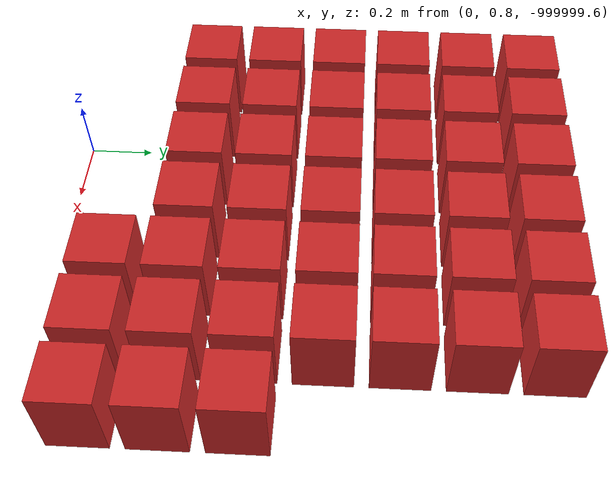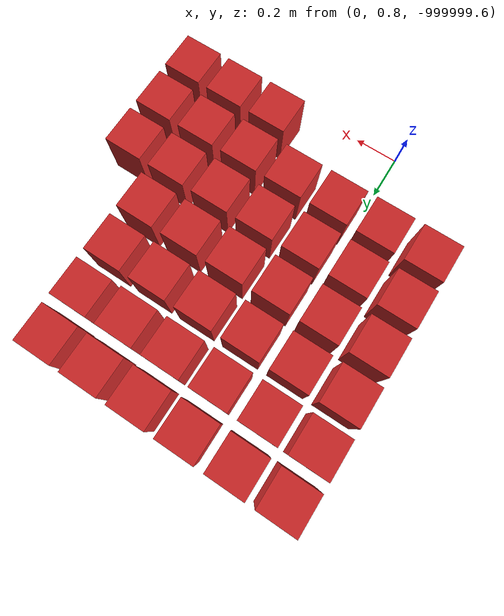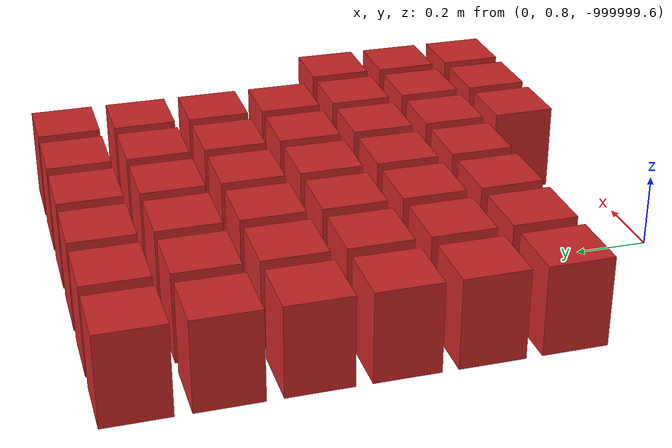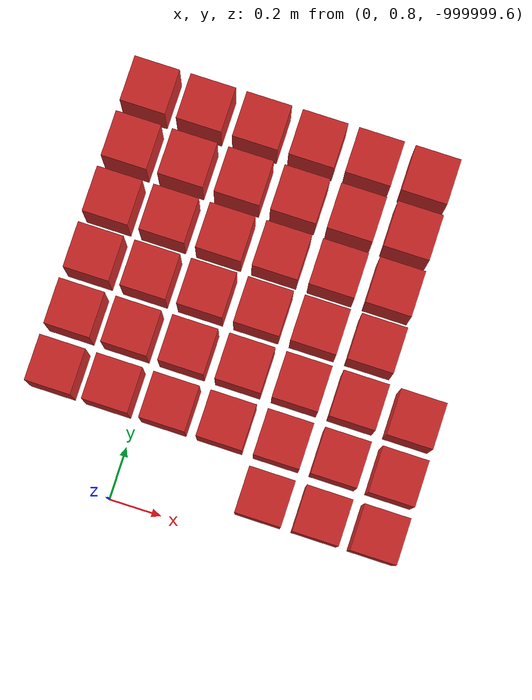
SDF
<sdf version="1.7">
 <world name="default">
  <model name="ground_plane">
   <static>1</static>
   <link name="link">
    <collision name="collision">
     <geometry><plane><normal>0 0 1</normal><size>100 100</size></plane></geometry>
     <surface>
      <contact><collide_bitmask>65535</collide_bitmask></contact>
      <friction><ode><mu>100</mu><mu2>50</mu2></ode></friction>
     </surface>
    </collision>
    <visual name="visual">
     <cast_shadows>0</cast_shadows>
     <geometry><plane><normal>0 0 1</normal><size>100 100</size></plane></geometry>
     <material>
      <script><uri>file://media/materials/scripts/gazebo.material</uri><name>Gazebo/Grey</name></script>
     </material>
    </visual>
   </link>
  </model>
  <model name="wall_382">
   <link name="link">
    <pose>0 0 0.5 0 -0 0</pose>
    <inertial>
     <mass>0.5167</mass>
     <inertia>
      <ixx>0.000861167</ixx>
      <ixy>0</ixy>
      <ixz>0</ixz>
      <iyy>0.000861167</iyy>
      <iyz>0</iyz>
      <izz>0.000861167</izz>
     </inertia>
    </inertial>
    <collision name="collision">
     <geometry><box><size>0.21 0.21 0.25</size></box></geometry>
     <surface>
      <contact>
       <poissons_ratio>0.347</poissons_ratio>
       <elastic_modulus>8.8e+09</elastic_modulus>
       <ode><kp>100000</kp><kd>100</kd><max_vel>100</max_vel><min_depth>0.001</min_depth></ode>
      </contact>
      <friction>
       <torsional>
        <coefficient>1</coefficient>
        <use_patch_radius>0</use_patch_radius>
        <surface_radius>0.01</surface_radius>
       </torsional>
      </friction>
     </surface>
    </collision>
    <visual name="visual">
     <geometry><box><size>0.175 0.175 0.25</size></box></geometry>
     <material>
      <script><uri>file://media/materials/scripts/gazebo.material</uri><name>Gazebo/Red</name></script>
     </material>
    </visual>
   </link>
   <pose>0.543478 0.978261 -1e+06 0 -0 0</pose>
  </model>
  <model name="wall_383">
   <link name="link">
    <pose>0 0 0.5 0 -0 0</pose>
    <inertial>
     <mass>0.5167</mass>
     <inertia>
      <ixx>0.000861167</ixx>
      <ixy>0</ixy>
      <ixz>0</ixz>
      <iyy>0.000861167</iyy>
      <iyz>0</iyz>
      <izz>0.000861167</izz>
     </inertia>
    </inertial>
    <collision name="collision">
     <geometry><box><size>0.21 0.21 0.25</size></box></geometry>
     <surface>
      <contact>
       <poissons_ratio>0.347</poissons_ratio>
       <elastic_modulus>8.8e+09</elastic_modulus>
       <ode><kp>100000</kp><kd>100</kd><max_vel>100</max_vel><min_depth>0.001</min_depth></ode>
      </contact>
      <friction>
       <torsional>
        <coefficient>1</coefficient>
        <use_patch_radius>0</use_patch_radius>
        <surface_radius>0.01</surface_radius>
       </torsional>
      </friction>
     </surface>
    </collision>
    <visual name="visual">
     <geometry><box><size>0.175 0.175 0.25</size></box></geometry>
     <material>
      <script><uri>file://media/materials/scripts/gazebo.material</uri><name>Gazebo/Red</name></script>
     </material>
    </visual>
   </link>
   <pose>0.76087 0.978261 -1e+06 0 -0 0</pose>
  </model>
  <model name="wall_384">
   <link name="link">
    <pose>0 0 0.5 0 -0 0</pose>
    <inertial>
     <mass>0.5167</mass>
     <inertia>
      <ixx>0.000861167</ixx>
      <ixy>0</ixy>
      <ixz>0</ixz>
      <iyy>0.000861167</iyy>
      <iyz>0</iyz>
      <izz>0.000861167</izz>
     </inertia>
    </inertial>
    <collision name="collision">
     <geometry><box><size>0.21 0.21 0.25</size></box></geometry>
     <surface>
      <contact>
       <poissons_ratio>0.347</poissons_ratio>
       <elastic_modulus>8.8e+09</elastic_modulus>
       <ode><kp>100000</kp><kd>100</kd><max_vel>100</max_vel><min_depth>0.001</min_depth></ode>
      </contact>
      <friction>
       <torsional>
        <coefficient>1</coefficient>
        <use_patch_radius>0</use_patch_radius>
        <surface_radius>0.01</surface_radius>
       </torsional>
      </friction>
     </surface>
    </collision>
    <visual name="visual">
     <geometry><box><size>0.175 0.175 0.25</size></box></geometry>
     <material>
      <script><uri>file://media/materials/scripts/gazebo.material</uri><name>Gazebo/Red</name></script>
     </material>
    </visual>
   </link>
   <pose>0.978261 0.978261 -1e+06 0 -0 0</pose>
  </model>
  <model name="wall_401">
   <link name="link">
    <pose>0 0 0.5 0 -0 0</pose>
    <inertial>
     <mass>0.5167</mass>
     <inertia>
      <ixx>0.000861167</ixx>
      <ixy>0</ixy>
      <ixz>0</ixz>
      <iyy>0.000861167</iyy>
      <iyz>0</iyz>
      <izz>0.000861167</izz>
     </inertia>
    </inertial>
    <collision name="collision">
     <geometry><box><size>0.21 0.21 0.25</size></box></geometry>
     <surface>
      <contact>
       <poissons_ratio>0.347</poissons_ratio>
       <elastic_modulus>8.8e+09</elastic_modulus>
       <ode><kp>100000</kp><kd>100</kd><max_vel>100</max_vel><min_depth>0.001</min_depth></ode>
      </contact>
      <friction>
       <torsional>
        <coefficient>1</coefficient>
        <use_patch_radius>0</use_patch_radius>
        <surface_radius>0.01</surface_radius>
       </torsional>
      </friction>
     </surface>
    </collision>
    <visual name="visual">
     <geometry><box><size>0.175 0.175 0.25</size></box></geometry>
     <material>
      <script><uri>file://media/materials/scripts/gazebo.material</uri><name>Gazebo/Red</name></script>
     </material>
    </visual>
   </link>
   <pose>-0.326087 1.19565 -1e+06 0 -0 0</pose>
  </model>
  <model name="wall_402">
   <link name="link">
    <pose>0 0 0.5 0 -0 0</pose>
    <inertial>
     <mass>0.5167</mass>
     <inertia>
      <ixx>0.000861167</ixx>
      <ixy>0</ixy>
      <ixz>0</ixz>
      <iyy>0.000861167</iyy>
      <iyz>0</iyz>
      <izz>0.000861167</izz>
     </inertia>
    </inertial>
    <collision name="collision">
     <geometry><box><size>0.21 0.21 0.25</size></box></geometry>
     <surface>
      <contact>
       <poissons_ratio>0.347</poissons_ratio>
       <elastic_modulus>8.8e+09</elastic_modulus>
       <ode><kp>100000</kp><kd>100</kd><max_vel>100</max_vel><min_depth>0.001</min_depth></ode>
      </contact>
      <friction>
       <torsional>
        <coefficient>1</coefficient>
        <use_patch_radius>0</use_patch_radius>
        <surface_radius>0.01</surface_radius>
       </torsional>
      </friction>
     </surface>
    </collision>
    <visual name="visual">
     <geometry><box><size>0.175 0.175 0.25</size></box></geometry>
     <material>
      <script><uri>file://media/materials/scripts/gazebo.material</uri><name>Gazebo/Red</name></script>
     </material>
    </visual>
   </link>
   <pose>-0.108696 1.19565 -1e+06 0 -0 0</pose>
  </model>
  <model name="wall_403">
   <link name="link">
    <pose>0 0 0.5 0 -0 0</pose>
    <inertial>
     <mass>0.5167</mass>
     <inertia>
      <ixx>0.000861167</ixx>
      <ixy>0</ixy>
      <ixz>0</ixz>
      <iyy>0.000861167</iyy>
      <iyz>0</iyz>
      <izz>0.000861167</izz>
     </inertia>
    </inertial>
    <collision name="collision">
     <geometry><box><size>0.21 0.21 0.25</size></box></geometry>
     <surface>
      <contact>
       <poissons_ratio>0.347</poissons_ratio>
       <elastic_modulus>8.8e+09</elastic_modulus>
       <ode><kp>100000</kp><kd>100</kd><max_vel>100</max_vel><min_depth>0.001</min_depth></ode>
      </contact>
      <friction>
       <torsional>
        <coefficient>1</coefficient>
        <use_patch_radius>0</use_patch_radius>
        <surface_radius>0.01</surface_radius>
       </torsional>
      </friction>
     </surface>
    </collision>
    <visual name="visual">
     <geometry><box><size>0.175 0.175 0.25</size></box></geometry>
     <material>
      <script><uri>file://media/materials/scripts/gazebo.material</uri><name>Gazebo/Red</name></script>
     </material>
    </visual>
   </link>
   <pose>0.108696 1.19565 -1e+06 0 -0 0</pose>
  </model>
  <model name="wall_404">
   <link name="link">
    <pose>0 0 0.5 0 -0 0</pose>
    <inertial>
     <mass>0.5167</mass>
     <inertia>
      <ixx>0.000861167</ixx>
      <ixy>0</ixy>
      <ixz>0</ixz>
      <iyy>0.000861167</iyy>
      <iyz>0</iyz>
      <izz>0.000861167</izz>
     </inertia>
    </inertial>
    <collision name="collision">
     <geometry><box><size>0.21 0.21 0.25</size></box></geometry>
     <surface>
      <contact>
       <poissons_ratio>0.347</poissons_ratio>
       <elastic_modulus>8.8e+09</elastic_modulus>
       <ode><kp>100000</kp><kd>100</kd><max_vel>100</max_vel><min_depth>0.001</min_depth></ode>
      </contact>
      <friction>
       <torsional>
        <coefficient>1</coefficient>
        <use_patch_radius>0</use_patch_radius>
        <surface_radius>0.01</surface_radius>
       </torsional>
      </friction>
     </surface>
    </collision>
    <visual name="visual">
     <geometry><box><size>0.175 0.175 0.25</size></box></geometry>
     <material>
      <script><uri>file://media/materials/scripts/gazebo.material</uri><name>Gazebo/Red</name></script>
     </material>
    </visual>
   </link>
   <pose>0.326087 1.19565 -1e+06 0 -0 0</pose>
  </model>
  <model name="wall_405">
   <link name="link">
    <pose>0 0 0.5 0 -0 0</pose>
    <inertial>
     <mass>0.5167</mass>
     <inertia>
      <ixx>0.000861167</ixx>
      <ixy>0</ixy>
      <ixz>0</ixz>
      <iyy>0.000861167</iyy>
      <iyz>0</iyz>
      <izz>0.000861167</izz>
     </inertia>
    </inertial>
    <collision name="collision">
     <geometry><box><size>0.21 0.21 0.25</size></box></geometry>
     <surface>
      <contact>
       <poissons_ratio>0.347</poissons_ratio>
       <elastic_modulus>8.8e+09</elastic_modulus>
       <ode><kp>100000</kp><kd>100</kd><max_vel>100</max_vel><min_depth>0.001</min_depth></ode>
      </contact>
      <friction>
       <torsional>
        <coefficient>1</coefficient>
        <use_patch_radius>0</use_patch_radius>
        <surface_radius>0.01</surface_radius>
       </torsional>
      </friction>
     </surface>
    </collision>
    <visual name="visual">
     <geometry><box><size>0.175 0.175 0.25</size></box></geometry>
     <material>
      <script><uri>file://media/materials/scripts/gazebo.material</uri><name>Gazebo/Red</name></script>
     </material>
    </visual>
   </link>
   <pose>0.543478 1.19565 -1e+06 0 -0 0</pose>
  </model>
  <model name="wall_406">
   <link name="link">
    <pose>0 0 0.5 0 -0 0</pose>
    <inertial>
     <mass>0.5167</mass>
     <inertia>
      <ixx>0.000861167</ixx>
      <ixy>0</ixy>
      <ixz>0</ixz>
      <iyy>0.000861167</iyy>
      <iyz>0</iyz>
      <izz>0.000861167</izz>
     </inertia>
    </inertial>
    <collision name="collision">
     <geometry><box><size>0.21 0.21 0.25</size></box></geometry>
     <surface>
      <contact>
       <poissons_ratio>0.347</poissons_ratio>
       <elastic_modulus>8.8e+09</elastic_modulus>
       <ode><kp>100000</kp><kd>100</kd><max_vel>100</max_vel><min_depth>0.001</min_depth></ode>
      </contact>
      <friction>
       <torsional>
        <coefficient>1</coefficient>
        <use_patch_radius>0</use_patch_radius>
        <surface_radius>0.01</surface_radius>
       </torsional>
      </friction>
     </surface>
    </collision>
    <visual name="visual">
     <geometry><box><size>0.175 0.175 0.25</size></box></geometry>
     <material>
      <script><uri>file://media/materials/scripts/gazebo.material</uri><name>Gazebo/Red</name></script>
     </material>
    </visual>
   </link>
   <pose>0.76087 1.19565 -1e+06 0 -0 0</pose>
  </model>
  <model name="wall_407">
   <link name="link">
    <pose>0 0 0.5 0 -0 0</pose>
    <inertial>
     <mass>0.5167</mass>
     <inertia>
      <ixx>0.000861167</ixx>
      <ixy>0</ixy>
      <ixz>0</ixz>
      <iyy>0.000861167</iyy>
      <iyz>0</iyz>
      <izz>0.000861167</izz>
     </inertia>
    </inertial>
    <collision name="collision">
     <geometry><box><size>0.21 0.21 0.25</size></box></geometry>
     <surface>
      <contact>
       <poissons_ratio>0.347</poissons_ratio>
       <elastic_modulus>8.8e+09</elastic_modulus>
       <ode><kp>100000</kp><kd>100</kd><max_vel>100</max_vel><min_depth>0.001</min_depth></ode>
      </contact>
      <friction>
       <torsional>
        <coefficient>1</coefficient>
        <use_patch_radius>0</use_patch_radius>
        <surface_radius>0.01</surface_radius>
       </torsional>
      </friction>
     </surface>
    </collision>
    <visual name="visual">
     <geometry><box><size>0.175 0.175 0.25</size></box></geometry>
     <material>
      <script><uri>file://media/materials/scripts/gazebo.material</uri><name>Gazebo/Red</name></script>
     </material>
    </visual>
   </link>
   <pose>0.978261 1.19565 -1e+06 0 -0 0</pose>
  </model>
  <model name="wall_424">
   <link name="link">
    <pose>0 0 0.5 0 -0 0</pose>
    <inertial>
     <mass>0.5167</mass>
     <inertia>
      <ixx>0.000861167</ixx>
      <ixy>0</ixy>
      <ixz>0</ixz>
      <iyy>0.000861167</iyy>
      <iyz>0</iyz>
      <izz>0.000861167</izz>
     </inertia>
    </inertial>
    <collision name="collision">
     <geometry><box><size>0.21 0.21 0.25</size></box></geometry>
     <surface>
      <contact>
       <poissons_ratio>0.347</poissons_ratio>
       <elastic_modulus>8.8e+09</elastic_modulus>
       <ode><kp>100000</kp><kd>100</kd><max_vel>100</max_vel><min_depth>0.001</min_depth></ode>
      </contact>
      <friction>
       <torsional>
        <coefficient>1</coefficient>
        <use_patch_radius>0</use_patch_radius>
        <surface_radius>0.01</surface_radius>
       </torsional>
      </friction>
     </surface>
    </collision>
    <visual name="visual">
     <geometry><box><size>0.175 0.175 0.25</size></box></geometry>
     <material>
      <script><uri>file://media/materials/scripts/gazebo.material</uri><name>Gazebo/Red</name></script>
     </material>
    </visual>
   </link>
   <pose>-0.326087 1.41304 -1e+06 0 -0 0</pose>
  </model>
  <model name="wall_425">
   <link name="link">
    <pose>0 0 0.5 0 -0 0</pose>
    <inertial>
     <mass>0.5167</mass>
     <inertia>
      <ixx>0.000861167</ixx>
      <ixy>0</ixy>
      <ixz>0</ixz>
      <iyy>0.000861167</iyy>
      <iyz>0</iyz>
      <izz>0.000861167</izz>
     </inertia>
    </inertial>
    <collision name="collision">
     <geometry><box><size>0.21 0.21 0.25</size></box></geometry>
     <surface>
      <contact>
       <poissons_ratio>0.347</poissons_ratio>
       <elastic_modulus>8.8e+09</elastic_modulus>
       <ode><kp>100000</kp><kd>100</kd><max_vel>100</max_vel><min_depth>0.001</min_depth></ode>
      </contact>
      <friction>
       <torsional>
        <coefficient>1</coefficient>
        <use_patch_radius>0</use_patch_radius>
        <surface_radius>0.01</surface_radius>
       </torsional>
      </friction>
     </surface>
    </collision>
    <visual name="visual">
     <geometry><box><size>0.175 0.175 0.25</size></box></geometry>
     <material>
      <script><uri>file://media/materials/scripts/gazebo.material</uri><name>Gazebo/Red</name></script>
     </material>
    </visual>
   </link>
   <pose>-0.108696 1.41304 -1e+06 0 -0 0</pose>
  </model>
  <model name="wall_426">
   <link name="link">
    <pose>0 0 0.5 0 -0 0</pose>
    <inertial>
     <mass>0.5167</mass>
     <inertia>
      <ixx>0.000861167</ixx>
      <ixy>0</ixy>
      <ixz>0</ixz>
      <iyy>0.000861167</iyy>
      <iyz>0</iyz>
      <izz>0.000861167</izz>
     </inertia>
    </inertial>
    <collision name="collision">
     <geometry><box><size>0.21 0.21 0.25</size></box></geometry>
     <surface>
      <contact>
       <poissons_ratio>0.347</poissons_ratio>
       <elastic_modulus>8.8e+09</elastic_modulus>
       <ode><kp>100000</kp><kd>100</kd><max_vel>100</max_vel><min_depth>0.001</min_depth></ode>
      </contact>
      <friction>
       <torsional>
        <coefficient>1</coefficient>
        <use_patch_radius>0</use_patch_radius>
        <surface_radius>0.01</surface_radius>
       </torsional>
      </friction>
     </surface>
    </collision>
    <visual name="visual">
     <geometry><box><size>0.175 0.175 0.25</size></box></geometry>
     <material>
      <script><uri>file://media/materials/scripts/gazebo.material</uri><name>Gazebo/Red</name></script>
     </material>
    </visual>
   </link>
   <pose>0.108696 1.41304 -1e+06 0 -0 0</pose>
  </model>
  <model name="wall_427">
   <link name="link">
    <pose>0 0 0.5 0 -0 0</pose>
    <inertial>
     <mass>0.5167</mass>
     <inertia>
      <ixx>0.000861167</ixx>
      <ixy>0</ixy>
      <ixz>0</ixz>
      <iyy>0.000861167</iyy>
      <iyz>0</iyz>
      <izz>0.000861167</izz>
     </inertia>
    </inertial>
    <collision name="collision">
     <geometry><box><size>0.21 0.21 0.25</size></box></geometry>
     <surface>
      <contact>
       <poissons_ratio>0.347</poissons_ratio>
       <elastic_modulus>8.8e+09</elastic_modulus>
       <ode><kp>100000</kp><kd>100</kd><max_vel>100</max_vel><min_depth>0.001</min_depth></ode>
      </contact>
      <friction>
       <torsional>
        <coefficient>1</coefficient>
        <use_patch_radius>0</use_patch_radius>
        <surface_radius>0.01</surface_radius>
       </torsional>
      </friction>
     </surface>
    </collision>
    <visual name="visual">
     <geometry><box><size>0.175 0.175 0.25</size></box></geometry>
     <material>
      <script><uri>file://media/materials/scripts/gazebo.material</uri><name>Gazebo/Red</name></script>
     </material>
    </visual>
   </link>
   <pose>0.326087 1.41304 -1e+06 0 -0 0</pose>
  </model>
  <model name="wall_428">
   <link name="link">
    <pose>0 0 0.5 0 -0 0</pose>
    <inertial>
     <mass>0.5167</mass>
     <inertia>
      <ixx>0.000861167</ixx>
      <ixy>0</ixy>
      <ixz>0</ixz>
      <iyy>0.000861167</iyy>
      <iyz>0</iyz>
      <izz>0.000861167</izz>
     </inertia>
    </inertial>
    <collision name="collision">
     <geometry><box><size>0.21 0.21 0.25</size></box></geometry>
     <surface>
      <contact>
       <poissons_ratio>0.347</poissons_ratio>
       <elastic_modulus>8.8e+09</elastic_modulus>
       <ode><kp>100000</kp><kd>100</kd><max_vel>100</max_vel><min_depth>0.001</min_depth></ode>
      </contact>
      <friction>
       <torsional>
        <coefficient>1</coefficient>
        <use_patch_radius>0</use_patch_radius>
        <surface_radius>0.01</surface_radius>
       </torsional>
      </friction>
     </surface>
    </collision>
    <visual name="visual">
     <geometry><box><size>0.175 0.175 0.25</size></box></geometry>
     <material>
      <script><uri>file://media/materials/scripts/gazebo.material</uri><name>Gazebo/Red</name></script>
     </material>
    </visual>
   </link>
   <pose>0.543478 1.41304 -1e+06 0 -0 0</pose>
  </model>
  <model name="wall_429">
   <link name="link">
    <pose>0 0 0.5 0 -0 0</pose>
    <inertial>
     <mass>0.5167</mass>
     <inertia>
      <ixx>0.000861167</ixx>
      <ixy>0</ixy>
      <ixz>0</ixz>
      <iyy>0.000861167</iyy>
      <iyz>0</iyz>
      <izz>0.000861167</izz>
     </inertia>
    </inertial>
    <collision name="collision">
     <geometry><box><size>0.21 0.21 0.25</size></box></geometry>
     <surface>
      <contact>
       <poissons_ratio>0.347</poissons_ratio>
       <elastic_modulus>8.8e+09</elastic_modulus>
       <ode><kp>100000</kp><kd>100</kd><max_vel>100</max_vel><min_depth>0.001</min_depth></ode>
      </contact>
      <friction>
       <torsional>
        <coefficient>1</coefficient>
        <use_patch_radius>0</use_patch_radius>
        <surface_radius>0.01</surface_radius>
       </torsional>
      </friction>
     </surface>
    </collision>
    <visual name="visual">
     <geometry><box><size>0.175 0.175 0.25</size></box></geometry>
     <material>
      <script><uri>file://media/materials/scripts/gazebo.material</uri><name>Gazebo/Red</name></script>
     </material>
    </visual>
   </link>
   <pose>0.76087 1.41304 -1e+06 0 -0 0</pose>
  </model>
  <model name="wall_430">
   <link name="link">
    <pose>0 0 0.5 0 -0 0</pose>
    <inertial>
     <mass>0.5167</mass>
     <inertia>
      <ixx>0.000861167</ixx>
      <ixy>0</ixy>
      <ixz>0</ixz>
      <iyy>0.000861167</iyy>
      <iyz>0</iyz>
      <izz>0.000861167</izz>
     </inertia>
    </inertial>
    <collision name="collision">
     <geometry><box><size>0.21 0.21 0.25</size></box></geometry>
     <surface>
      <contact>
       <poissons_ratio>0.347</poissons_ratio>
       <elastic_modulus>8.8e+09</elastic_modulus>
       <ode><kp>100000</kp><kd>100</kd><max_vel>100</max_vel><min_depth>0.001</min_depth></ode>
      </contact>
      <friction>
       <torsional>
        <coefficient>1</coefficient>
        <use_patch_radius>0</use_patch_radius>
        <surface_radius>0.01</surface_radius>
       </torsional>
      </friction>
     </surface>
    </collision>
    <visual name="visual">
     <geometry><box><size>0.175 0.175 0.25</size></box></geometry>
     <material>
      <script><uri>file://media/materials/scripts/gazebo.material</uri><name>Gazebo/Red</name></script>
     </material>
    </visual>
   </link>
   <pose>0.978261 1.41304 -1e+06 0 -0 0</pose>
  </model>
  <model name="wall_447">
   <link name="link">
    <pose>0 0 0.5 0 -0 0</pose>
    <inertial>
     <mass>0.5167</mass>
     <inertia>
      <ixx>0.000861167</ixx>
      <ixy>0</ixy>
      <ixz>0</ixz>
      <iyy>0.000861167</iyy>
      <iyz>0</iyz>
      <izz>0.000861167</izz>
     </inertia>
    </inertial>
    <collision name="collision">
     <geometry><box><size>0.21 0.21 0.25</size></box></geometry>
     <surface>
      <contact>
       <poissons_ratio>0.347</poissons_ratio>
       <elastic_modulus>8.8e+09</elastic_modulus>
       <ode><kp>100000</kp><kd>100</kd><max_vel>100</max_vel><min_depth>0.001</min_depth></ode>
      </contact>
      <friction>
       <torsional>
        <coefficient>1</coefficient>
        <use_patch_radius>0</use_patch_radius>
        <surface_radius>0.01</surface_radius>
       </torsional>
      </friction>
     </surface>
    </collision>
    <visual name="visual">
     <geometry><box><size>0.175 0.175 0.25</size></box></geometry>
     <material>
      <script><uri>file://media/materials/scripts/gazebo.material</uri><name>Gazebo/Red</name></script>
     </material>
    </visual>
   </link>
   <pose>-0.326087 1.63043 -1e+06 0 -0 0</pose>
  </model>
  <model name="wall_448">
   <link name="link">
    <pose>0 0 0.5 0 -0 0</pose>
    <inertial>
     <mass>0.5167</mass>
     <inertia>
      <ixx>0.000861167</ixx>
      <ixy>0</ixy>
      <ixz>0</ixz>
      <iyy>0.000861167</iyy>
      <iyz>0</iyz>
      <izz>0.000861167</izz>
     </inertia>
    </inertial>
    <collision name="collision">
     <geometry><box><size>0.21 0.21 0.25</size></box></geometry>
     <surface>
      <contact>
       <poissons_ratio>0.347</poissons_ratio>
       <elastic_modulus>8.8e+09</elastic_modulus>
       <ode><kp>100000</kp><kd>100</kd><max_vel>100</max_vel><min_depth>0.001</min_depth></ode>
      </contact>
      <friction>
       <torsional>
        <coefficient>1</coefficient>
        <use_patch_radius>0</use_patch_radius>
        <surface_radius>0.01</surface_radius>
       </torsional>
      </friction>
     </surface>
    </collision>
    <visual name="visual">
     <geometry><box><size>0.175 0.175 0.25</size></box></geometry>
     <material>
      <script><uri>file://media/materials/scripts/gazebo.material</uri><name>Gazebo/Red</name></script>
     </material>
    </visual>
   </link>
   <pose>-0.108696 1.63043 -1e+06 0 -0 0</pose>
  </model>
  <model name="wall_449">
   <link name="link">
    <pose>0 0 0.5 0 -0 0</pose>
    <inertial>
     <mass>0.5167</mass>
     <inertia>
      <ixx>0.000861167</ixx>
      <ixy>0</ixy>
      <ixz>0</ixz>
      <iyy>0.000861167</iyy>
      <iyz>0</iyz>
      <izz>0.000861167</izz>
     </inertia>
    </inertial>
    <collision name="collision">
     <geometry><box><size>0.21 0.21 0.25</size></box></geometry>
     <surface>
      <contact>
       <poissons_ratio>0.347</poissons_ratio>
       <elastic_modulus>8.8e+09</elastic_modulus>
       <ode><kp>100000</kp><kd>100</kd><max_vel>100</max_vel><min_depth>0.001</min_depth></ode>
      </contact>
      <friction>
       <torsional>
        <coefficient>1</coefficient>
        <use_patch_radius>0</use_patch_radius>
        <surface_radius>0.01</surface_radius>
       </torsional>
      </friction>
     </surface>
    </collision>
    <visual name="visual">
     <geometry><box><size>0.175 0.175 0.25</size></box></geometry>
     <material>
      <script><uri>file://media/materials/scripts/gazebo.material</uri><name>Gazebo/Red</name></script>
     </material>
    </visual>
   </link>
   <pose>0.108696 1.63043 -1e+06 0 -0 0</pose>
  </model>
  <model name="wall_450">
   <link name="link">
    <pose>0 0 0.5 0 -0 0</pose>
    <inertial>
     <mass>0.5167</mass>
     <inertia>
      <ixx>0.000861167</ixx>
      <ixy>0</ixy>
      <ixz>0</ixz>
      <iyy>0.000861167</iyy>
      <iyz>0</iyz>
      <izz>0.000861167</izz>
     </inertia>
    </inertial>
    <collision name="collision">
     <geometry><box><size>0.21 0.21 0.25</size></box></geometry>
     <surface>
      <contact>
       <poissons_ratio>0.347</poissons_ratio>
       <elastic_modulus>8.8e+09</elastic_modulus>
       <ode><kp>100000</kp><kd>100</kd><max_vel>100</max_vel><min_depth>0.001</min_depth></ode>
      </contact>
      <friction>
       <torsional>
        <coefficient>1</coefficient>
        <use_patch_radius>0</use_patch_radius>
        <surface_radius>0.01</surface_radius>
       </torsional>
      </friction>
     </surface>
    </collision>
    <visual name="visual">
     <geometry><box><size>0.175 0.175 0.25</size></box></geometry>
     <material>
      <script><uri>file://media/materials/scripts/gazebo.material</uri><name>Gazebo/Red</name></script>
     </material>
    </visual>
   </link>
   <pose>0.326087 1.63043 -1e+06 0 -0 0</pose>
  </model>
  <model name="wall_451">
   <link name="link">
    <pose>0 0 0.5 0 -0 0</pose>
    <inertial>
     <mass>0.5167</mass>
     <inertia>
      <ixx>0.000861167</ixx>
      <ixy>0</ixy>
      <ixz>0</ixz>
      <iyy>0.000861167</iyy>
      <iyz>0</iyz>
      <izz>0.000861167</izz>
     </inertia>
    </inertial>
    <collision name="collision">
     <geometry><box><size>0.21 0.21 0.25</size></box></geometry>
     <surface>
      <contact>
       <poissons_ratio>0.347</poissons_ratio>
       <elastic_modulus>8.8e+09</elastic_modulus>
       <ode><kp>100000</kp><kd>100</kd><max_vel>100</max_vel><min_depth>0.001</min_depth></ode>
      </contact>
      <friction>
       <torsional>
        <coefficient>1</coefficient>
        <use_patch_radius>0</use_patch_radius>
        <surface_radius>0.01</surface_radius>
       </torsional>
      </friction>
     </surface>
    </collision>
    <visual name="visual">
     <geometry><box><size>0.175 0.175 0.25</size></box></geometry>
     <material>
      <script><uri>file://media/materials/scripts/gazebo.material</uri><name>Gazebo/Red</name></script>
     </material>
    </visual>
   </link>
   <pose>0.543478 1.63043 -1e+06 0 -0 0</pose>
  </model>
  <model name="wall_452">
   <link name="link">
    <pose>0 0 0.5 0 -0 0</pose>
    <inertial>
     <mass>0.5167</mass>
     <inertia>
      <ixx>0.000861167</ixx>
      <ixy>0</ixy>
      <ixz>0</ixz>
      <iyy>0.000861167</iyy>
      <iyz>0</iyz>
      <izz>0.000861167</izz>
     </inertia>
    </inertial>
    <collision name="collision">
     <geometry><box><size>0.21 0.21 0.25</size></box></geometry>
     <surface>
      <contact>
       <poissons_ratio>0.347</poissons_ratio>
       <elastic_modulus>8.8e+09</elastic_modulus>
       <ode><kp>100000</kp><kd>100</kd><max_vel>100</max_vel><min_depth>0.001</min_depth></ode>
      </contact>
      <friction>
       <torsional>
        <coefficient>1</coefficient>
        <use_patch_radius>0</use_patch_radius>
        <surface_radius>0.01</surface_radius>
       </torsional>
      </friction>
     </surface>
    </collision>
    <visual name="visual">
     <geometry><box><size>0.175 0.175 0.25</size></box></geometry>
     <material>
      <script><uri>file://media/materials/scripts/gazebo.material</uri><name>Gazebo/Red</name></script>
     </material>
    </visual>
   </link>
   <pose>0.76087 1.63043 -1e+06 0 -0 0</pose>
  </model>
  <model name="wall_470">
   <link name="link">
    <pose>0 0 0.5 0 -0 0</pose>
    <inertial>
     <mass>0.5167</mass>
     <inertia>
      <ixx>0.000861167</ixx>
      <ixy>0</ixy>
      <ixz>0</ixz>
      <iyy>0.000861167</iyy>
      <iyz>0</iyz>
      <izz>0.000861167</izz>
     </inertia>
    </inertial>
    <collision name="collision">
     <geometry><box><size>0.21 0.21 0.25</size></box></geometry>
     <surface>
      <contact>
       <poissons_ratio>0.347</poissons_ratio>
       <elastic_modulus>8.8e+09</elastic_modulus>
       <ode><kp>100000</kp><kd>100</kd><max_vel>100</max_vel><min_depth>0.001</min_depth></ode>
      </contact>
      <friction>
       <torsional>
        <coefficient>1</coefficient>
        <use_patch_radius>0</use_patch_radius>
        <surface_radius>0.01</surface_radius>
       </torsional>
      </friction>
     </surface>
    </collision>
    <visual name="visual">
     <geometry><box><size>0.175 0.175 0.25</size></box></geometry>
     <material>
      <script><uri>file://media/materials/scripts/gazebo.material</uri><name>Gazebo/Red</name></script>
     </material>
    </visual>
   </link>
   <pose>-0.326087 1.84783 -1e+06 0 -0 0</pose>
  </model>
  <model name="wall_471">
   <link name="link">
    <pose>0 0 0.5 0 -0 0</pose>
    <inertial>
     <mass>0.5167</mass>
     <inertia>
      <ixx>0.000861167</ixx>
      <ixy>0</ixy>
      <ixz>0</ixz>
      <iyy>0.000861167</iyy>
      <iyz>0</iyz>
      <izz>0.000861167</izz>
     </inertia>
    </inertial>
    <collision name="collision">
     <geometry><box><size>0.21 0.21 0.25</size></box></geometry>
     <surface>
      <contact>
       <poissons_ratio>0.347</poissons_ratio>
       <elastic_modulus>8.8e+09</elastic_modulus>
       <ode><kp>100000</kp><kd>100</kd><max_vel>100</max_vel><min_depth>0.001</min_depth></ode>
      </contact>
      <friction>
       <torsional>
        <coefficient>1</coefficient>
        <use_patch_radius>0</use_patch_radius>
        <surface_radius>0.01</surface_radius>
       </torsional>
      </friction>
     </surface>
    </collision>
    <visual name="visual">
     <geometry><box><size>0.175 0.175 0.25</size></box></geometry>
     <material>
      <script><uri>file://media/materials/scripts/gazebo.material</uri><name>Gazebo/Red</name></script>
     </material>
    </visual>
   </link>
   <pose>-0.108696 1.84783 -1e+06 0 -0 0</pose>
  </model>
  <model name="wall_472">
   <link name="link">
    <pose>0 0 0.5 0 -0 0</pose>
    <inertial>
     <mass>0.5167</mass>
     <inertia>
      <ixx>0.000861167</ixx>
      <ixy>0</ixy>
      <ixz>0</ixz>
      <iyy>0.000861167</iyy>
      <iyz>0</iyz>
      <izz>0.000861167</izz>
     </inertia>
    </inertial>
    <collision name="collision">
     <geometry><box><size>0.21 0.21 0.25</size></box></geometry>
     <surface>
      <contact>
       <poissons_ratio>0.347</poissons_ratio>
       <elastic_modulus>8.8e+09</elastic_modulus>
       <ode><kp>100000</kp><kd>100</kd><max_vel>100</max_vel><min_depth>0.001</min_depth></ode>
      </contact>
      <friction>
       <torsional>
        <coefficient>1</coefficient>
        <use_patch_radius>0</use_patch_radius>
        <surface_radius>0.01</surface_radius>
       </torsional>
      </friction>
     </surface>
    </collision>
    <visual name="visual">
     <geometry><box><size>0.175 0.175 0.25</size></box></geometry>
     <material>
      <script><uri>file://media/materials/scripts/gazebo.material</uri><name>Gazebo/Red</name></script>
     </material>
    </visual>
   </link>
   <pose>0.108696 1.84783 -1e+06 0 -0 0</pose>
  </model>
  <model name="wall_473">
   <link name="link">
    <pose>0 0 0.5 0 -0 0</pose>
    <inertial>
     <mass>0.5167</mass>
     <inertia>
      <ixx>0.000861167</ixx>
      <ixy>0</ixy>
      <ixz>0</ixz>
      <iyy>0.000861167</iyy>
      <iyz>0</iyz>
      <izz>0.000861167</izz>
     </inertia>
    </inertial>
    <collision name="collision">
     <geometry><box><size>0.21 0.21 0.25</size></box></geometry>
     <surface>
      <contact>
       <poissons_ratio>0.347</poissons_ratio>
       <elastic_modulus>8.8e+09</elastic_modulus>
       <ode><kp>100000</kp><kd>100</kd><max_vel>100</max_vel><min_depth>0.001</min_depth></ode>
      </contact>
      <friction>
       <torsional>
        <coefficient>1</coefficient>
        <use_patch_radius>0</use_patch_radius>
        <surface_radius>0.01</surface_radius>
       </torsional>
      </friction>
     </surface>
    </collision>
    <visual name="visual">
     <geometry><box><size>0.175 0.175 0.25</size></box></geometry>
     <material>
      <script><uri>file://media/materials/scripts/gazebo.material</uri><name>Gazebo/Red</name></script>
     </material>
    </visual>
   </link>
   <pose>0.326087 1.84783 -1e+06 0 -0 0</pose>
  </model>
  <model name="wall_474">
   <link name="link">
    <pose>0 0 0.5 0 -0 0</pose>
    <inertial>
     <mass>0.5167</mass>
     <inertia>
      <ixx>0.000861167</ixx>
      <ixy>0</ixy>
      <ixz>0</ixz>
      <iyy>0.000861167</iyy>
      <iyz>0</iyz>
      <izz>0.000861167</izz>
     </inertia>
    </inertial>
    <collision name="collision">
     <geometry><box><size>0.21 0.21 0.25</size></box></geometry>
     <surface>
      <contact>
       <poissons_ratio>0.347</poissons_ratio>
       <elastic_modulus>8.8e+09</elastic_modulus>
       <ode><kp>100000</kp><kd>100</kd><max_vel>100</max_vel><min_depth>0.001</min_depth></ode>
      </contact>
      <friction>
       <torsional>
        <coefficient>1</coefficient>
        <use_patch_radius>0</use_patch_radius>
        <surface_radius>0.01</surface_radius>
       </torsional>
      </friction>
     </surface>
    </collision>
    <visual name="visual">
     <geometry><box><size>0.175 0.175 0.25</size></box></geometry>
     <material>
      <script><uri>file://media/materials/scripts/gazebo.material</uri><name>Gazebo/Red</name></script>
     </material>
    </visual>
   </link>
   <pose>0.543478 1.84783 -1e+06 0 -0 0</pose>
  </model>
  <model name="wall_475">
   <link name="link">
    <pose>0 0 0.5 0 -0 0</pose>
    <inertial>
     <mass>0.5167</mass>
     <inertia>
      <ixx>0.000861167</ixx>
      <ixy>0</ixy>
      <ixz>0</ixz>
      <iyy>0.000861167</iyy>
      <iyz>0</iyz>
      <izz>0.000861167</izz>
     </inertia>
    </inertial>
    <collision name="collision">
     <geometry><box><size>0.21 0.21 0.25</size></box></geometry>
     <surface>
      <contact>
       <poissons_ratio>0.347</poissons_ratio>
       <elastic_modulus>8.8e+09</elastic_modulus>
       <ode><kp>100000</kp><kd>100</kd><max_vel>100</max_vel><min_depth>0.001</min_depth></ode>
      </contact>
      <friction>
       <torsional>
        <coefficient>1</coefficient>
        <use_patch_radius>0</use_patch_radius>
        <surface_radius>0.01</surface_radius>
       </torsional>
      </friction>
     </surface>
    </collision>
    <visual name="visual">
     <geometry><box><size>0.175 0.175 0.25</size></box></geometry>
     <material>
      <script><uri>file://media/materials/scripts/gazebo.material</uri><name>Gazebo/Red</name></script>
     </material>
    </visual>
   </link>
   <pose>0.76087 1.84783 -1e+06 0 -0 0</pose>
  </model>
  <model name="wall_493">
   <link name="link">
    <pose>0 0 0.5 0 -0 0</pose>
    <inertial>
     <mass>0.5167</mass>
     <inertia>
      <ixx>0.000861167</ixx>
      <ixy>0</ixy>
      <ixz>0</ixz>
      <iyy>0.000861167</iyy>
      <iyz>0</iyz>
      <izz>0.000861167</izz>
     </inertia>
    </inertial>
    <collision name="collision">
     <geometry><box><size>0.21 0.21 0.25</size></box></geometry>
     <surface>
      <contact>
       <poissons_ratio>0.347</poissons_ratio>
       <elastic_modulus>8.8e+09</elastic_modulus>
       <ode><kp>100000</kp><kd>100</kd><max_vel>100</max_vel><min_depth>0.001</min_depth></ode>
      </contact>
      <friction>
       <torsional>
        <coefficient>1</coefficient>
        <use_patch_radius>0</use_patch_radius>
        <surface_radius>0.01</surface_radius>
       </torsional>
      </friction>
     </surface>
    </collision>
    <visual name="visual">
     <geometry><box><size>0.175 0.175 0.25</size></box></geometry>
     <material>
      <script><uri>file://media/materials/scripts/gazebo.material</uri><name>Gazebo/Red</name></script>
     </material>
    </visual>
   </link>
   <pose>-0.326087 2.06522 -1e+06 0 -0 0</pose>
  </model>
  <model name="wall_494">
   <link name="link">
    <pose>0 0 0.5 0 -0 0</pose>
    <inertial>
     <mass>0.5167</mass>
     <inertia>
      <ixx>0.000861167</ixx>
      <ixy>0</ixy>
      <ixz>0</ixz>
      <iyy>0.000861167</iyy>
      <iyz>0</iyz>
      <izz>0.000861167</izz>
     </inertia>
    </inertial>
    <collision name="collision">
     <geometry><box><size>0.21 0.21 0.25</size></box></geometry>
     <surface>
      <contact>
       <poissons_ratio>0.347</poissons_ratio>
       <elastic_modulus>8.8e+09</elastic_modulus>
       <ode><kp>100000</kp><kd>100</kd><max_vel>100</max_vel><min_depth>0.001</min_depth></ode>
      </contact>
      <friction>
       <torsional>
        <coefficient>1</coefficient>
        <use_patch_radius>0</use_patch_radius>
        <surface_radius>0.01</surface_radius>
       </torsional>
      </friction>
     </surface>
    </collision>
    <visual name="visual">
     <geometry><box><size>0.175 0.175 0.25</size></box></geometry>
     <material>
      <script><uri>file://media/materials/scripts/gazebo.material</uri><name>Gazebo/Red</name></script>
     </material>
    </visual>
   </link>
   <pose>-0.108696 2.06522 -1e+06 0 -0 0</pose>
  </model>
  <model name="wall_495">
   <link name="link">
    <pose>0 0 0.5 0 -0 0</pose>
    <inertial>
     <mass>0.5167</mass>
     <inertia>
      <ixx>0.000861167</ixx>
      <ixy>0</ixy>
      <ixz>0</ixz>
      <iyy>0.000861167</iyy>
      <iyz>0</iyz>
      <izz>0.000861167</izz>
     </inertia>
    </inertial>
    <collision name="collision">
     <geometry><box><size>0.21 0.21 0.25</size></box></geometry>
     <surface>
      <contact>
       <poissons_ratio>0.347</poissons_ratio>
       <elastic_modulus>8.8e+09</elastic_modulus>
       <ode><kp>100000</kp><kd>100</kd><max_vel>100</max_vel><min_depth>0.001</min_depth></ode>
      </contact>
      <friction>
       <torsional>
        <coefficient>1</coefficient>
        <use_patch_radius>0</use_patch_radius>
        <surface_radius>0.01</surface_radius>
       </torsional>
      </friction>
     </surface>
    </collision>
    <visual name="visual">
     <geometry><box><size>0.175 0.175 0.25</size></box></geometry>
     <material>
      <script><uri>file://media/materials/scripts/gazebo.material</uri><name>Gazebo/Red</name></script>
     </material>
    </visual>
   </link>
   <pose>0.108696 2.06522 -1e+06 0 -0 0</pose>
  </model>
  <model name="wall_496">
   <link name="link">
    <pose>0 0 0.5 0 -0 0</pose>
    <inertial>
     <mass>0.5167</mass>
     <inertia>
      <ixx>0.000861167</ixx>
      <ixy>0</ixy>
      <ixz>0</ixz>
      <iyy>0.000861167</iyy>
      <iyz>0</iyz>
      <izz>0.000861167</izz>
     </inertia>
    </inertial>
    <collision name="collision">
     <geometry><box><size>0.21 0.21 0.25</size></box></geometry>
     <surface>
      <contact>
       <poissons_ratio>0.347</poissons_ratio>
       <elastic_modulus>8.8e+09</elastic_modulus>
       <ode><kp>100000</kp><kd>100</kd><max_vel>100</max_vel><min_depth>0.001</min_depth></ode>
      </contact>
      <friction>
       <torsional>
        <coefficient>1</coefficient>
        <use_patch_radius>0</use_patch_radius>
        <surface_radius>0.01</surface_radius>
       </torsional>
      </friction>
     </surface>
    </collision>
    <visual name="visual">
     <geometry><box><size>0.175 0.175 0.25</size></box></geometry>
     <material>
      <script><uri>file://media/materials/scripts/gazebo.material</uri><name>Gazebo/Red</name></script>
     </material>
    </visual>
   </link>
   <pose>0.326087 2.06522 -1e+06 0 -0 0</pose>
  </model>
  <model name="wall_497">
   <link name="link">
    <pose>0 0 0.5 0 -0 0</pose>
    <inertial>
     <mass>0.5167</mass>
     <inertia>
      <ixx>0.000861167</ixx>
      <ixy>0</ixy>
      <ixz>0</ixz>
      <iyy>0.000861167</iyy>
      <iyz>0</iyz>
      <izz>0.000861167</izz>
     </inertia>
    </inertial>
    <collision name="collision">
     <geometry><box><size>0.21 0.21 0.25</size></box></geometry>
     <surface>
      <contact>
       <poissons_ratio>0.347</poissons_ratio>
       <elastic_modulus>8.8e+09</elastic_modulus>
       <ode><kp>100000</kp><kd>100</kd><max_vel>100</max_vel><min_depth>0.001</min_depth></ode>
      </contact>
      <friction>
       <torsional>
        <coefficient>1</coefficient>
        <use_patch_radius>0</use_patch_radius>
        <surface_radius>0.01</surface_radius>
       </torsional>
      </friction>
     </surface>
    </collision>
    <visual name="visual">
     <geometry><box><size>0.175 0.175 0.25</size></box></geometry>
     <material>
      <script><uri>file://media/materials/scripts/gazebo.material</uri><name>Gazebo/Red</name></script>
     </material>
    </visual>
   </link>
   <pose>0.543478 2.06522 -1e+06 0 -0 0</pose>
  </model>
  <model name="wall_498">
   <link name="link">
    <pose>0 0 0.5 0 -0 0</pose>
    <inertial>
     <mass>0.5167</mass>
     <inertia>
      <ixx>0.000861167</ixx>
      <ixy>0</ixy>
      <ixz>0</ixz>
      <iyy>0.000861167</iyy>
      <iyz>0</iyz>
      <izz>0.000861167</izz>
     </inertia>
    </inertial>
    <collision name="collision">
     <geometry><box><size>0.21 0.21 0.25</size></box></geometry>
     <surface>
      <contact>
       <poissons_ratio>0.347</poissons_ratio>
       <elastic_modulus>8.8e+09</elastic_modulus>
       <ode><kp>100000</kp><kd>100</kd><max_vel>100</max_vel><min_depth>0.001</min_depth></ode>
      </contact>
      <friction>
       <torsional>
        <coefficient>1</coefficient>
        <use_patch_radius>0</use_patch_radius>
        <surface_radius>0.01</surface_radius>
       </torsional>
      </friction>
     </surface>
    </collision>
    <visual name="visual">
     <geometry><box><size>0.175 0.175 0.25</size></box></geometry>
     <material>
      <script><uri>file://media/materials/scripts/gazebo.material</uri><name>Gazebo/Red</name></script>
     </material>
    </visual>
   </link>
   <pose>0.76087 2.06522 -1e+06 0 -0 0</pose>
  </model>
  <model name="wall_516">
   <link name="link">
    <pose>0 0 0.5 0 -0 0</pose>
    <inertial>
     <mass>0.5167</mass>
     <inertia>
      <ixx>0.000861167</ixx>
      <ixy>0</ixy>
      <ixz>0</ixz>
      <iyy>0.000861167</iyy>
      <iyz>0</iyz>
      <izz>0.000861167</izz>
     </inertia>
    </inertial>
    <collision name="collision">
     <geometry><box><size>0.21 0.21 0.25</size></box></geometry>
     <surface>
      <contact>
       <poissons_ratio>0.347</poissons_ratio>
       <elastic_modulus>8.8e+09</elastic_modulus>
       <ode><kp>100000</kp><kd>100</kd><max_vel>100</max_vel><min_depth>0.001</min_depth></ode>
      </contact>
      <friction>
       <torsional>
        <coefficient>1</coefficient>
        <use_patch_radius>0</use_patch_radius>
        <surface_radius>0.01</surface_radius>
       </torsional>
      </friction>
     </surface>
    </collision>
    <visual name="visual">
     <geometry><box><size>0.175 0.175 0.25</size></box></geometry>
     <material>
      <script><uri>file://media/materials/scripts/gazebo.material</uri><name>Gazebo/Red</name></script>
     </material>
    </visual>
   </link>
   <pose>-0.326087 2.28261 -1e+06 0 -0 0</pose>
  </model>
  <model name="wall_517">
   <link name="link">
    <pose>0 0 0.5 0 -0 0</pose>
    <inertial>
     <mass>0.5167</mass>
     <inertia>
      <ixx>0.000861167</ixx>
      <ixy>0</ixy>
      <ixz>0</ixz>
      <iyy>0.000861167</iyy>
      <iyz>0</iyz>
      <izz>0.000861167</izz>
     </inertia>
    </inertial>
    <collision name="collision">
     <geometry><box><size>0.21 0.21 0.25</size></box></geometry>
     <surface>
      <contact>
       <poissons_ratio>0.347</poissons_ratio>
       <elastic_modulus>8.8e+09</elastic_modulus>
       <ode><kp>100000</kp><kd>100</kd><max_vel>100</max_vel><min_depth>0.001</min_depth></ode>
      </contact>
      <friction>
       <torsional>
        <coefficient>1</coefficient>
        <use_patch_radius>0</use_patch_radius>
        <surface_radius>0.01</surface_radius>
       </torsional>
      </friction>
     </surface>
    </collision>
    <visual name="visual">
     <geometry><box><size>0.175 0.175 0.25</size></box></geometry>
     <material>
      <script><uri>file://media/materials/scripts/gazebo.material</uri><name>Gazebo/Red</name></script>
     </material>
    </visual>
   </link>
   <pose>-0.108696 2.28261 -1e+06 0 -0 0</pose>
  </model>
  <model name="wall_518">
   <link name="link">
    <pose>0 0 0.5 0 -0 0</pose>
    <inertial>
     <mass>0.5167</mass>
     <inertia>
      <ixx>0.000861167</ixx>
      <ixy>0</ixy>
      <ixz>0</ixz>
      <iyy>0.000861167</iyy>
      <iyz>0</iyz>
      <izz>0.000861167</izz>
     </inertia>
    </inertial>
    <collision name="collision">
     <geometry><box><size>0.21 0.21 0.25</size></box></geometry>
     <surface>
      <contact>
       <poissons_ratio>0.347</poissons_ratio>
       <elastic_modulus>8.8e+09</elastic_modulus>
       <ode><kp>100000</kp><kd>100</kd><max_vel>100</max_vel><min_depth>0.001</min_depth></ode>
      </contact>
      <friction>
       <torsional>
        <coefficient>1</coefficient>
        <use_patch_radius>0</use_patch_radius>
        <surface_radius>0.01</surface_radius>
       </torsional>
      </friction>
     </surface>
    </collision>
    <visual name="visual">
     <geometry><box><size>0.175 0.175 0.25</size></box></geometry>
     <material>
      <script><uri>file://media/materials/scripts/gazebo.material</uri><name>Gazebo/Red</name></script>
     </material>
    </visual>
   </link>
   <pose>0.108696 2.28261 -1e+06 0 -0 0</pose>
  </model>
  <model name="wall_519">
   <link name="link">
    <pose>0 0 0.5 0 -0 0</pose>
    <inertial>
     <mass>0.5167</mass>
     <inertia>
      <ixx>0.000861167</ixx>
      <ixy>0</ixy>
      <ixz>0</ixz>
      <iyy>0.000861167</iyy>
      <iyz>0</iyz>
      <izz>0.000861167</izz>
     </inertia>
    </inertial>
    <collision name="collision">
     <geometry><box><size>0.21 0.21 0.25</size></box></geometry>
     <surface>
      <contact>
       <poissons_ratio>0.347</poissons_ratio>
       <elastic_modulus>8.8e+09</elastic_modulus>
       <ode><kp>100000</kp><kd>100</kd><max_vel>100</max_vel><min_depth>0.001</min_depth></ode>
      </contact>
      <friction>
       <torsional>
        <coefficient>1</coefficient>
        <use_patch_radius>0</use_patch_radius>
        <surface_radius>0.01</surface_radius>
       </torsional>
      </friction>
     </surface>
    </collision>
    <visual name="visual">
     <geometry><box><size>0.175 0.175 0.25</size></box></geometry>
     <material>
      <script><uri>file://media/materials/scripts/gazebo.material</uri><name>Gazebo/Red</name></script>
     </material>
    </visual>
   </link>
   <pose>0.326087 2.28261 -1e+06 0 -0 0</pose>
  </model>
  <model name="wall_520">
   <link name="link">
    <pose>0 0 0.5 0 -0 0</pose>
    <inertial>
     <mass>0.5167</mass>
     <inertia>
      <ixx>0.000861167</ixx>
      <ixy>0</ixy>
      <ixz>0</ixz>
      <iyy>0.000861167</iyy>
      <iyz>0</iyz>
      <izz>0.000861167</izz>
     </inertia>
    </inertial>
    <collision name="collision">
     <geometry><box><size>0.21 0.21 0.25</size></box></geometry>
     <surface>
      <contact>
       <poissons_ratio>0.347</poissons_ratio>
       <elastic_modulus>8.8e+09</elastic_modulus>
       <ode><kp>100000</kp><kd>100</kd><max_vel>100</max_vel><min_depth>0.001</min_depth></ode>
      </contact>
      <friction>
       <torsional>
        <coefficient>1</coefficient>
        <use_patch_radius>0</use_patch_radius>
        <surface_radius>0.01</surface_radius>
       </torsional>
      </friction>
     </surface>
    </collision>
    <visual name="visual">
     <geometry><box><size>0.175 0.175 0.25</size></box></geometry>
     <material>
      <script><uri>file://media/materials/scripts/gazebo.material</uri><name>Gazebo/Red</name></script>
     </material>
    </visual>
   </link>
   <pose>0.543478 2.28261 -1e+06 0 -0 0</pose>
  </model>
  <model name="wall_521">
   <link name="link">
    <pose>0 0 0.5 0 -0 0</pose>
    <inertial>
     <mass>0.5167</mass>
     <inertia>
      <ixx>0.000861167</ixx>
      <ixy>0</ixy>
      <ixz>0</ixz>
      <iyy>0.000861167</iyy>
      <iyz>0</iyz>
      <izz>0.000861167</izz>
     </inertia>
    </inertial>
    <collision name="collision">
     <geometry><box><size>0.21 0.21 0.25</size></box></geometry>
     <surface>
      <contact>
       <poissons_ratio>0.347</poissons_ratio>
       <elastic_modulus>8.8e+09</elastic_modulus>
       <ode><kp>100000</kp><kd>100</kd><max_vel>100</max_vel><min_depth>0.001</min_depth></ode>
      </contact>
      <friction>
       <torsional>
        <coefficient>1</coefficient>
        <use_patch_radius>0</use_patch_radius>
        <surface_radius>0.01</surface_radius>
       </torsional>
      </friction>
     </surface>
    </collision>
    <visual name="visual">
     <geometry><box><size>0.175 0.175 0.25</size></box></geometry>
     <material>
      <script><uri>file://media/materials/scripts/gazebo.material</uri><name>Gazebo/Red</name></script>
     </material>
    </visual>
   </link>
   <pose>0.76087 2.28261 -1e+06 0 -0 0</pose>
  </model>
 </world>
</sdf>
